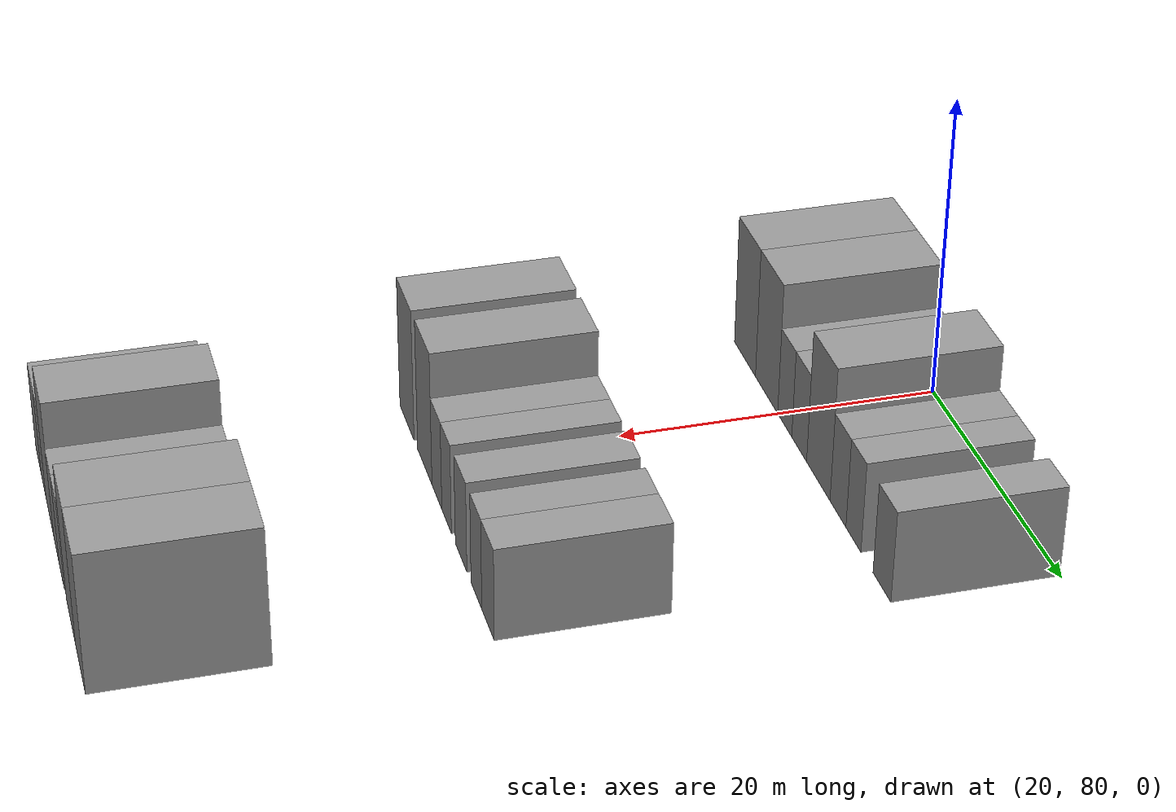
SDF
<sdf version="1.6">
 <world name="default">
  <model name="building_71">
   <static>1</static>
   <pose>25.0000 73.3955 0 0.000000 0.000000 0.000000</pose>
   <link name="link">
    <pose>0 0 4.50 0 0 0</pose>
    <collision name="collision"><geometry><box><size>10.0000 4.2781 9.0000</size></box></geometry></collision>
    <visual name="visual">
     <cast_shadows>0</cast_shadows>
     <geometry><box><size>10.0000 4.2781 9.0000</size></box></geometry>
     <material>
      <script>
       <uri>model://grey_wall/materials/scripts</uri>
       <uri>model://grey_wall/materials/textures</uri>
       <name>vrc/grey_wall</name>
      </script>
     </material>
    </visual>
   </link>
  </model>
  <model name="building_72">
   <static>1</static>
   <pose>25.0000 77.7174 0 0.000000 0.000000 0.000000</pose>
   <link name="link">
    <pose>0 0 4.50 0 0 0</pose>
    <collision name="collision"><geometry><box><size>10.0000 4.3655 9.0000</size></box></geometry></collision>
    <visual name="visual">
     <cast_shadows>0</cast_shadows>
     <geometry><box><size>10.0000 4.3655 9.0000</size></box></geometry>
     <material>
      <script>
       <uri>model://grey_wall/materials/scripts</uri>
       <uri>model://grey_wall/materials/textures</uri>
       <name>vrc/grey_wall</name>
      </script>
     </material>
    </visual>
   </link>
  </model>
  <model name="building_73">
   <static>1</static>
   <pose>25.0000 81.2436 0 0.000000 0.000000 0.000000</pose>
   <link name="link">
    <pose>0 0 3.00 0 0 0</pose>
    <collision name="collision"><geometry><box><size>10.0000 2.6871 6.0000</size></box></geometry></collision>
    <visual name="visual">
     <cast_shadows>0</cast_shadows>
     <geometry><box><size>10.0000 2.6871 6.0000</size></box></geometry>
     <material>
      <script>
       <uri>model://grey_wall/materials/scripts</uri>
       <uri>model://grey_wall/materials/textures</uri>
       <name>vrc/grey_wall</name>
      </script>
     </material>
    </visual>
   </link>
  </model>
  <model name="building_74">
   <static>1</static>
   <pose>25.0000 83.9647 0 0.000000 0.000000 0.000000</pose>
   <link name="link">
    <pose>0 0 3.00 0 0 0</pose>
    <collision name="collision"><geometry><box><size>10.0000 2.7551 6.0000</size></box></geometry></collision>
    <visual name="visual">
     <cast_shadows>0</cast_shadows>
     <geometry><box><size>10.0000 2.7551 6.0000</size></box></geometry>
     <material>
      <script>
       <uri>model://grey_wall/materials/scripts</uri>
       <uri>model://grey_wall/materials/textures</uri>
       <name>vrc/grey_wall</name>
      </script>
     </material>
    </visual>
   </link>
  </model>
  <model name="building_75">
   <static>1</static>
   <pose>25.0000 87.4468 0 0.000000 0.000000 0.000000</pose>
   <link name="link">
    <pose>0 0 4.50 0 0 0</pose>
    <collision name="collision"><geometry><box><size>10.0000 4.2091 9.0000</size></box></geometry></collision>
    <visual name="visual">
     <cast_shadows>0</cast_shadows>
     <geometry><box><size>10.0000 4.2091 9.0000</size></box></geometry>
     <material>
      <script>
       <uri>model://grey_wall/materials/scripts</uri>
       <uri>model://grey_wall/materials/textures</uri>
       <name>vrc/grey_wall</name>
      </script>
     </material>
    </visual>
   </link>
  </model>
  <model name="building_76">
   <static>1</static>
   <pose>25.0000 90.9316 0 0.000000 0.000000 0.000000</pose>
   <link name="link">
    <pose>0 0 3.00 0 0 0</pose>
    <collision name="collision"><geometry><box><size>10.0000 2.7605 6.0000</size></box></geometry></collision>
    <visual name="visual">
     <cast_shadows>0</cast_shadows>
     <geometry><box><size>10.0000 2.7605 6.0000</size></box></geometry>
     <material>
      <script>
       <uri>model://grey_wall/materials/scripts</uri>
       <uri>model://grey_wall/materials/textures</uri>
       <name>vrc/grey_wall</name>
      </script>
     </material>
    </visual>
   </link>
  </model>
  <model name="building_77">
   <static>1</static>
   <pose>25.0000 93.5852 0 0.000000 0.000000 0.000000</pose>
   <link name="link">
    <pose>0 0 3.00 0 0 0</pose>
    <collision name="collision"><geometry><box><size>10.0000 2.5466 6.0000</size></box></geometry></collision>
    <visual name="visual">
     <cast_shadows>0</cast_shadows>
     <geometry><box><size>10.0000 2.5466 6.0000</size></box></geometry>
     <material>
      <script>
       <uri>model://grey_wall/materials/scripts</uri>
       <uri>model://grey_wall/materials/textures</uri>
       <name>vrc/grey_wall</name>
      </script>
     </material>
    </visual>
   </link>
  </model>
  <model name="building_78">
   <static>1</static>
   <pose>25.0000 98.3024 0 0.000000 0.000000 0.000000</pose>
   <link name="link">
    <pose>0 0 3.00 0 0 0</pose>
    <collision name="collision"><geometry><box><size>10.0000 2.8877 6.0000</size></box></geometry></collision>
    <visual name="visual">
     <cast_shadows>0</cast_shadows>
     <geometry><box><size>10.0000 2.8877 6.0000</size></box></geometry>
     <material>
      <script>
       <uri>model://grey_wall/materials/scripts</uri>
       <uri>model://grey_wall/materials/textures</uri>
       <name>vrc/grey_wall</name>
      </script>
     </material>
    </visual>
   </link>
  </model>
  <model name="building_196">
   <static>1</static>
   <pose>47.0000 75.3109 0 0.000000 0.000000 0.000000</pose>
   <link name="link">
    <pose>0 0 4.50 0 0 0</pose>
    <collision name="collision"><geometry><box><size>10.0000 4.0234 9.0000</size></box></geometry></collision>
    <visual name="visual">
     <cast_shadows>0</cast_shadows>
     <geometry><box><size>10.0000 4.0234 9.0000</size></box></geometry>
     <material>
      <script>
       <uri>model://grey_wall/materials/scripts</uri>
       <uri>model://grey_wall/materials/textures</uri>
       <name>vrc/grey_wall</name>
      </script>
     </material>
    </visual>
   </link>
  </model>
  <model name="building_197">
   <static>1</static>
   <pose>47.0000 80.2809 0 0.000000 0.000000 0.000000</pose>
   <link name="link">
    <pose>0 0 4.50 0 0 0</pose>
    <collision name="collision"><geometry><box><size>10.0000 3.9167 9.0000</size></box></geometry></collision>
    <visual name="visual">
     <cast_shadows>0</cast_shadows>
     <geometry><box><size>10.0000 3.9167 9.0000</size></box></geometry>
     <material>
      <script>
       <uri>model://grey_wall/materials/scripts</uri>
       <uri>model://grey_wall/materials/textures</uri>
       <name>vrc/grey_wall</name>
      </script>
     </material>
    </visual>
   </link>
  </model>
  <model name="building_198">
   <static>1</static>
   <pose>47.0000 83.5421 0 0.000000 0.000000 0.000000</pose>
   <link name="link">
    <pose>0 0 3.00 0 0 0</pose>
    <collision name="collision"><geometry><box><size>10.0000 2.6057 6.0000</size></box></geometry></collision>
    <visual name="visual">
     <cast_shadows>0</cast_shadows>
     <geometry><box><size>10.0000 2.6057 6.0000</size></box></geometry>
     <material>
      <script>
       <uri>model://grey_wall/materials/scripts</uri>
       <uri>model://grey_wall/materials/textures</uri>
       <name>vrc/grey_wall</name>
      </script>
     </material>
    </visual>
   </link>
  </model>
  <model name="building_199">
   <static>1</static>
   <pose>47.0000 86.0800 0 0.000000 0.000000 0.000000</pose>
   <link name="link">
    <pose>0 0 3.00 0 0 0</pose>
    <collision name="collision"><geometry><box><size>10.0000 2.4700 6.0000</size></box></geometry></collision>
    <visual name="visual">
     <cast_shadows>0</cast_shadows>
     <geometry><box><size>10.0000 2.4700 6.0000</size></box></geometry>
     <material>
      <script>
       <uri>model://grey_wall/materials/scripts</uri>
       <uri>model://grey_wall/materials/textures</uri>
       <name>vrc/grey_wall</name>
      </script>
     </material>
    </visual>
   </link>
  </model>
  <model name="building_200">
   <static>1</static>
   <pose>47.0000 89.7513 0 0.000000 0.000000 0.000000</pose>
   <link name="link">
    <pose>0 0 3.00 0 0 0</pose>
    <collision name="collision"><geometry><box><size>10.0000 2.8726 6.0000</size></box></geometry></collision>
    <visual name="visual">
     <cast_shadows>0</cast_shadows>
     <geometry><box><size>10.0000 2.8726 6.0000</size></box></geometry>
     <material>
      <script>
       <uri>model://grey_wall/materials/scripts</uri>
       <uri>model://grey_wall/materials/textures</uri>
       <name>vrc/grey_wall</name>
      </script>
     </material>
    </visual>
   </link>
  </model>
  <model name="building_201">
   <static>1</static>
   <pose>47.0000 93.4786 0 0.000000 0.000000 0.000000</pose>
   <link name="link">
    <pose>0 0 3.00 0 0 0</pose>
    <collision name="collision"><geometry><box><size>10.0000 2.5819 6.0000</size></box></geometry></collision>
    <visual name="visual">
     <cast_shadows>0</cast_shadows>
     <geometry><box><size>10.0000 2.5819 6.0000</size></box></geometry>
     <material>
      <script>
       <uri>model://grey_wall/materials/scripts</uri>
       <uri>model://grey_wall/materials/textures</uri>
       <name>vrc/grey_wall</name>
      </script>
     </material>
    </visual>
   </link>
  </model>
  <model name="building_202">
   <static>1</static>
   <pose>47.0000 96.2320 0 0.000000 0.000000 0.000000</pose>
   <link name="link">
    <pose>0 0 3.00 0 0 0</pose>
    <collision name="collision"><geometry><box><size>10.0000 2.9250 6.0000</size></box></geometry></collision>
    <visual name="visual">
     <cast_shadows>0</cast_shadows>
     <geometry><box><size>10.0000 2.9250 6.0000</size></box></geometry>
     <material>
      <script>
       <uri>model://grey_wall/materials/scripts</uri>
       <uri>model://grey_wall/materials/textures</uri>
       <name>vrc/grey_wall</name>
      </script>
     </material>
    </visual>
   </link>
  </model>
  <model name="building_318">
   <static>1</static>
   <pose>69.0000 74.0572 0 0.000000 0.000000 0.000000</pose>
   <link name="link">
    <pose>0 0 3.00 0 0 0</pose>
    <collision name="collision"><geometry><box><size>10.0000 2.9494 6.0000</size></box></geometry></collision>
    <visual name="visual">
     <cast_shadows>0</cast_shadows>
     <geometry><box><size>10.0000 2.9494 6.0000</size></box></geometry>
     <material>
      <script>
       <uri>model://grey_wall/materials/scripts</uri>
       <uri>model://grey_wall/materials/textures</uri>
       <name>vrc/grey_wall</name>
      </script>
     </material>
    </visual>
   </link>
  </model>
  <model name="building_319">
   <static>1</static>
   <pose>69.0000 76.7507 0 0.000000 0.000000 0.000000</pose>
   <link name="link">
    <pose>0 0 3.00 0 0 0</pose>
    <collision name="collision"><geometry><box><size>10.0000 2.4375 6.0000</size></box></geometry></collision>
    <visual name="visual">
     <cast_shadows>0</cast_shadows>
     <geometry><box><size>10.0000 2.4375 6.0000</size></box></geometry>
     <material>
      <script>
       <uri>model://grey_wall/materials/scripts</uri>
       <uri>model://grey_wall/materials/textures</uri>
       <name>vrc/grey_wall</name>
      </script>
     </material>
    </visual>
   </link>
  </model>
  <model name="building_320">
   <static>1</static>
   <pose>69.0000 79.9959 0 0.000000 0.000000 0.000000</pose>
   <link name="link">
    <pose>0 0 4.50 0 0 0</pose>
    <collision name="collision"><geometry><box><size>10.0000 4.0529 9.0000</size></box></geometry></collision>
    <visual name="visual">
     <cast_shadows>0</cast_shadows>
     <geometry><box><size>10.0000 4.0529 9.0000</size></box></geometry>
     <material>
      <script>
       <uri>model://grey_wall/materials/scripts</uri>
       <uri>model://grey_wall/materials/textures</uri>
       <name>vrc/grey_wall</name>
      </script>
     </material>
    </visual>
   </link>
  </model>
  <model name="building_321">
   <static>1</static>
   <pose>69.0000 83.3604 0 0.000000 0.000000 0.000000</pose>
   <link name="link">
    <pose>0 0 3.00 0 0 0</pose>
    <collision name="collision"><geometry><box><size>10.0000 2.6761 6.0000</size></box></geometry></collision>
    <visual name="visual">
     <cast_shadows>0</cast_shadows>
     <geometry><box><size>10.0000 2.6761 6.0000</size></box></geometry>
     <material>
      <script>
       <uri>model://grey_wall/materials/scripts</uri>
       <uri>model://grey_wall/materials/textures</uri>
       <name>vrc/grey_wall</name>
      </script>
     </material>
    </visual>
   </link>
  </model>
  <model name="building_322">
   <static>1</static>
   <pose>69.0000 85.9786 0 0.000000 0.000000 0.000000</pose>
   <link name="link">
    <pose>0 0 3.00 0 0 0</pose>
    <collision name="collision"><geometry><box><size>10.0000 2.5602 6.0000</size></box></geometry></collision>
    <visual name="visual">
     <cast_shadows>0</cast_shadows>
     <geometry><box><size>10.0000 2.5602 6.0000</size></box></geometry>
     <material>
      <script>
       <uri>model://grey_wall/materials/scripts</uri>
       <uri>model://grey_wall/materials/textures</uri>
       <name>vrc/grey_wall</name>
      </script>
     </material>
    </visual>
   </link>
  </model>
  <model name="building_323">
   <static>1</static>
   <pose>69.0000 90.3619 0 0.000000 0.000000 0.000000</pose>
   <link name="link">
    <pose>0 0 4.50 0 0 0</pose>
    <collision name="collision"><geometry><box><size>10.0000 4.2064 9.0000</size></box></geometry></collision>
    <visual name="visual">
     <cast_shadows>0</cast_shadows>
     <geometry><box><size>10.0000 4.2064 9.0000</size></box></geometry>
     <material>
      <script>
       <uri>model://grey_wall/materials/scripts</uri>
       <uri>model://grey_wall/materials/textures</uri>
       <name>vrc/grey_wall</name>
      </script>
     </material>
    </visual>
   </link>
  </model>
  <model name="building_324">
   <static>1</static>
   <pose>69.0000 94.6767 0 0.000000 0.000000 0.000000</pose>
   <link name="link">
    <pose>0 0 4.50 0 0 0</pose>
    <collision name="collision"><geometry><box><size>10.0000 4.4231 9.0000</size></box></geometry></collision>
    <visual name="visual">
     <cast_shadows>0</cast_shadows>
     <geometry><box><size>10.0000 4.4231 9.0000</size></box></geometry>
     <material>
      <script>
       <uri>model://grey_wall/materials/scripts</uri>
       <uri>model://grey_wall/materials/textures</uri>
       <name>vrc/grey_wall</name>
      </script>
     </material>
    </visual>
   </link>
  </model>
 </world>
</sdf>
